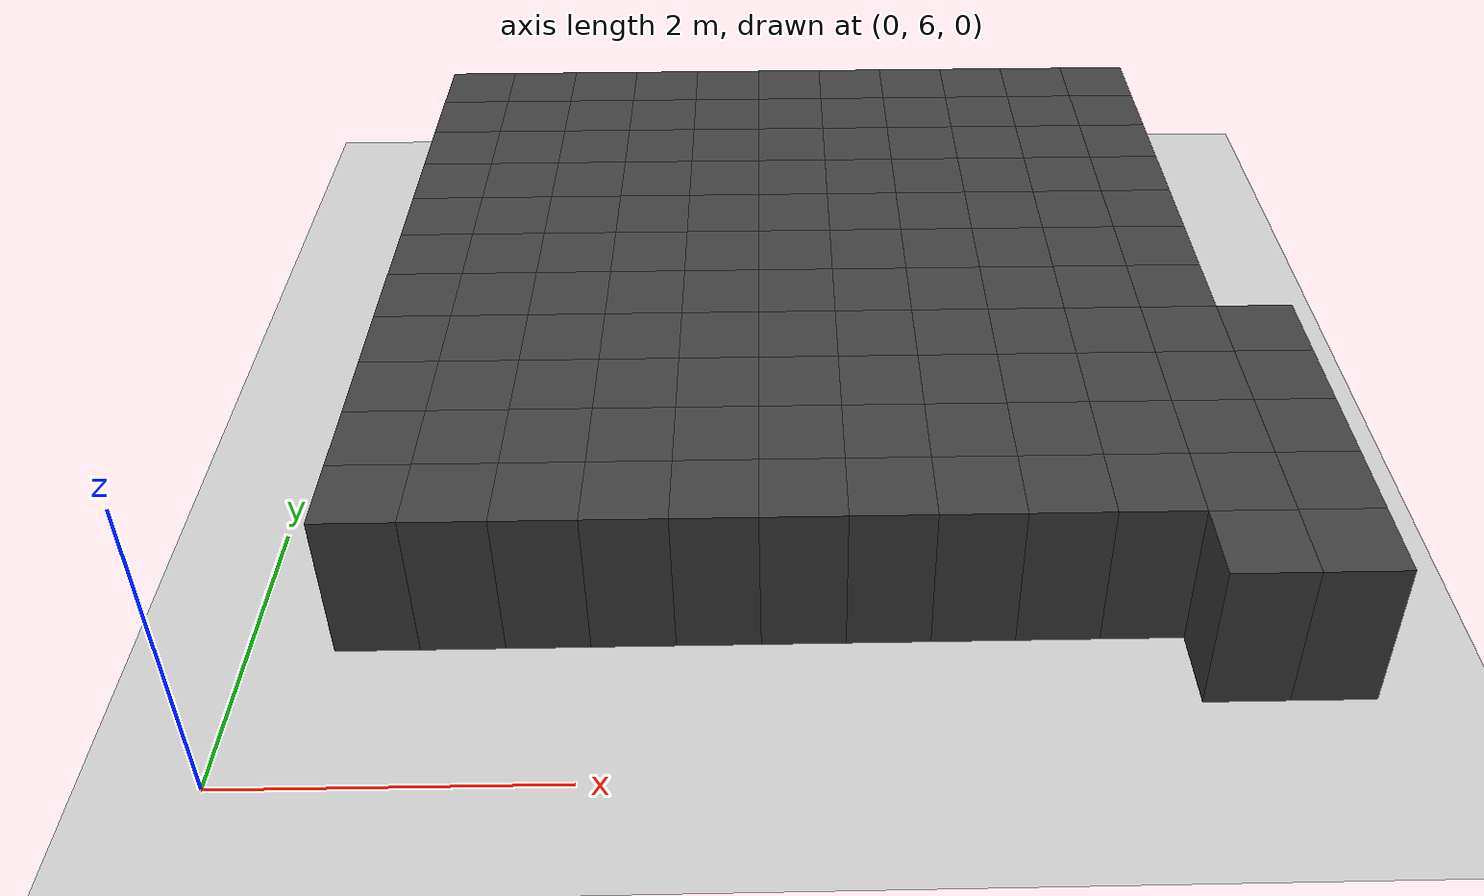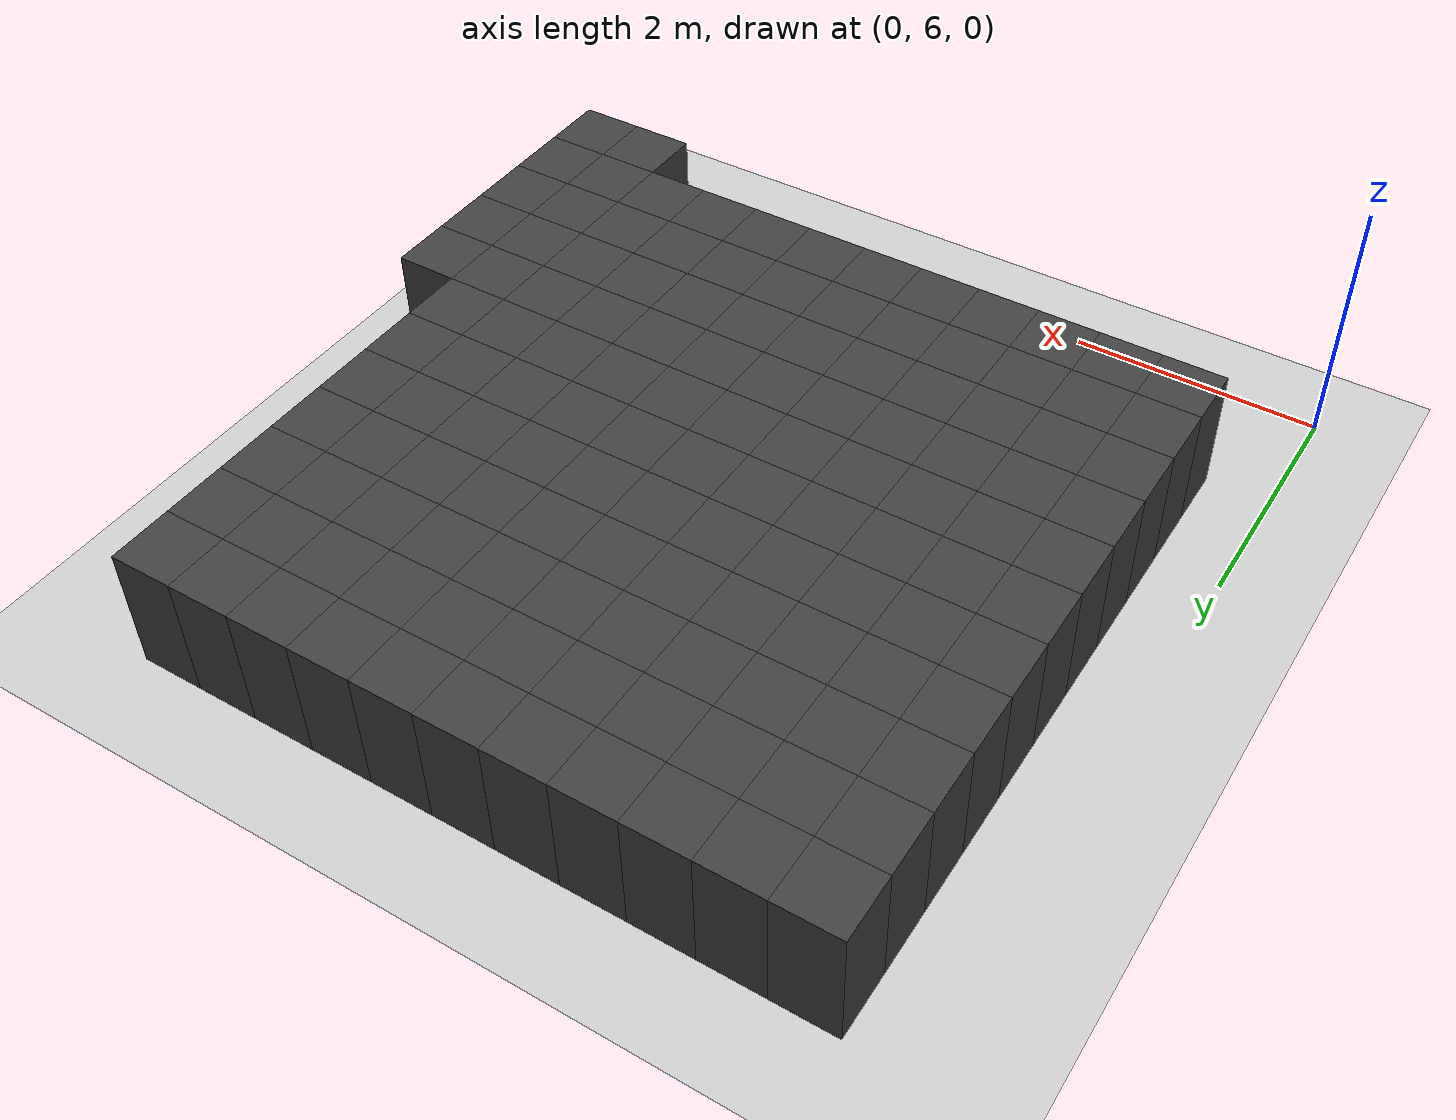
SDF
<sdf version="1.7">
 <world name="map_11779">
  <model name="ground_plane">
   <static>true</static>
   <link name="link">
    <collision name="collision">
     <geometry><plane><normal>0 0 1</normal><size>200 200</size></plane></geometry>
    </collision>
    <visual name="visual">
     <geometry><plane><normal>0 0 1</normal><size>200 200</size></plane></geometry>
     <material><ambient>0.8 0.8 0.8 1</ambient><diffuse>0.8 0.8 0.8 1</diffuse></material>
    </visual>
   </link>
  </model>
  <model name="maze_environment">
   <static>true</static>
   <link name="wall_26">
    <pose>0.750 12.250 0.500 0 0 0</pose>
    <collision name="col"><geometry><box><size>0.5 0.5 1.0</size></box></geometry></collision>
    <visual name="vis">
     <geometry><box><size>0.5 0.5 1.0</size></box></geometry>
     <material><ambient>0.15 0.15 0.15 1</ambient><diffuse>0.25 0.25 0.25 1</diffuse></material>
    </visual>
   </link>
   <link name="wall_27">
    <pose>1.250 12.250 0.500 0 0 0</pose>
    <collision name="col"><geometry><box><size>0.5 0.5 1.0</size></box></geometry></collision>
    <visual name="vis">
     <geometry><box><size>0.5 0.5 1.0</size></box></geometry>
     <material><ambient>0.15 0.15 0.15 1</ambient><diffuse>0.25 0.25 0.25 1</diffuse></material>
    </visual>
   </link>
   <link name="wall_28">
    <pose>1.750 12.250 0.500 0 0 0</pose>
    <collision name="col"><geometry><box><size>0.5 0.5 1.0</size></box></geometry></collision>
    <visual name="vis">
     <geometry><box><size>0.5 0.5 1.0</size></box></geometry>
     <material><ambient>0.15 0.15 0.15 1</ambient><diffuse>0.25 0.25 0.25 1</diffuse></material>
    </visual>
   </link>
   <link name="wall_29">
    <pose>2.250 12.250 0.500 0 0 0</pose>
    <collision name="col"><geometry><box><size>0.5 0.5 1.0</size></box></geometry></collision>
    <visual name="vis">
     <geometry><box><size>0.5 0.5 1.0</size></box></geometry>
     <material><ambient>0.15 0.15 0.15 1</ambient><diffuse>0.25 0.25 0.25 1</diffuse></material>
    </visual>
   </link>
   <link name="wall_30">
    <pose>2.750 12.250 0.500 0 0 0</pose>
    <collision name="col"><geometry><box><size>0.5 0.5 1.0</size></box></geometry></collision>
    <visual name="vis">
     <geometry><box><size>0.5 0.5 1.0</size></box></geometry>
     <material><ambient>0.15 0.15 0.15 1</ambient><diffuse>0.25 0.25 0.25 1</diffuse></material>
    </visual>
   </link>
   <link name="wall_31">
    <pose>3.250 12.250 0.500 0 0 0</pose>
    <collision name="col"><geometry><box><size>0.5 0.5 1.0</size></box></geometry></collision>
    <visual name="vis">
     <geometry><box><size>0.5 0.5 1.0</size></box></geometry>
     <material><ambient>0.15 0.15 0.15 1</ambient><diffuse>0.25 0.25 0.25 1</diffuse></material>
    </visual>
   </link>
   <link name="wall_32">
    <pose>3.750 12.250 0.500 0 0 0</pose>
    <collision name="col"><geometry><box><size>0.5 0.5 1.0</size></box></geometry></collision>
    <visual name="vis">
     <geometry><box><size>0.5 0.5 1.0</size></box></geometry>
     <material><ambient>0.15 0.15 0.15 1</ambient><diffuse>0.25 0.25 0.25 1</diffuse></material>
    </visual>
   </link>
   <link name="wall_33">
    <pose>4.250 12.250 0.500 0 0 0</pose>
    <collision name="col"><geometry><box><size>0.5 0.5 1.0</size></box></geometry></collision>
    <visual name="vis">
     <geometry><box><size>0.5 0.5 1.0</size></box></geometry>
     <material><ambient>0.15 0.15 0.15 1</ambient><diffuse>0.25 0.25 0.25 1</diffuse></material>
    </visual>
   </link>
   <link name="wall_34">
    <pose>4.750 12.250 0.500 0 0 0</pose>
    <collision name="col"><geometry><box><size>0.5 0.5 1.0</size></box></geometry></collision>
    <visual name="vis">
     <geometry><box><size>0.5 0.5 1.0</size></box></geometry>
     <material><ambient>0.15 0.15 0.15 1</ambient><diffuse>0.25 0.25 0.25 1</diffuse></material>
    </visual>
   </link>
   <link name="wall_35">
    <pose>5.250 12.250 0.500 0 0 0</pose>
    <collision name="col"><geometry><box><size>0.5 0.5 1.0</size></box></geometry></collision>
    <visual name="vis">
     <geometry><box><size>0.5 0.5 1.0</size></box></geometry>
     <material><ambient>0.15 0.15 0.15 1</ambient><diffuse>0.25 0.25 0.25 1</diffuse></material>
    </visual>
   </link>
   <link name="wall_36">
    <pose>5.750 12.250 0.500 0 0 0</pose>
    <collision name="col"><geometry><box><size>0.5 0.5 1.0</size></box></geometry></collision>
    <visual name="vis">
     <geometry><box><size>0.5 0.5 1.0</size></box></geometry>
     <material><ambient>0.15 0.15 0.15 1</ambient><diffuse>0.25 0.25 0.25 1</diffuse></material>
    </visual>
   </link>
   <link name="wall_67">
    <pose>0.750 11.750 0.500 0 0 0</pose>
    <collision name="col"><geometry><box><size>0.5 0.5 1.0</size></box></geometry></collision>
    <visual name="vis">
     <geometry><box><size>0.5 0.5 1.0</size></box></geometry>
     <material><ambient>0.15 0.15 0.15 1</ambient><diffuse>0.25 0.25 0.25 1</diffuse></material>
    </visual>
   </link>
   <link name="wall_68">
    <pose>1.250 11.750 0.500 0 0 0</pose>
    <collision name="col"><geometry><box><size>0.5 0.5 1.0</size></box></geometry></collision>
    <visual name="vis">
     <geometry><box><size>0.5 0.5 1.0</size></box></geometry>
     <material><ambient>0.15 0.15 0.15 1</ambient><diffuse>0.25 0.25 0.25 1</diffuse></material>
    </visual>
   </link>
   <link name="wall_69">
    <pose>1.750 11.750 0.500 0 0 0</pose>
    <collision name="col"><geometry><box><size>0.5 0.5 1.0</size></box></geometry></collision>
    <visual name="vis">
     <geometry><box><size>0.5 0.5 1.0</size></box></geometry>
     <material><ambient>0.15 0.15 0.15 1</ambient><diffuse>0.25 0.25 0.25 1</diffuse></material>
    </visual>
   </link>
   <link name="wall_70">
    <pose>2.250 11.750 0.500 0 0 0</pose>
    <collision name="col"><geometry><box><size>0.5 0.5 1.0</size></box></geometry></collision>
    <visual name="vis">
     <geometry><box><size>0.5 0.5 1.0</size></box></geometry>
     <material><ambient>0.15 0.15 0.15 1</ambient><diffuse>0.25 0.25 0.25 1</diffuse></material>
    </visual>
   </link>
   <link name="wall_71">
    <pose>2.750 11.750 0.500 0 0 0</pose>
    <collision name="col"><geometry><box><size>0.5 0.5 1.0</size></box></geometry></collision>
    <visual name="vis">
     <geometry><box><size>0.5 0.5 1.0</size></box></geometry>
     <material><ambient>0.15 0.15 0.15 1</ambient><diffuse>0.25 0.25 0.25 1</diffuse></material>
    </visual>
   </link>
   <link name="wall_72">
    <pose>3.250 11.750 0.500 0 0 0</pose>
    <collision name="col"><geometry><box><size>0.5 0.5 1.0</size></box></geometry></collision>
    <visual name="vis">
     <geometry><box><size>0.5 0.5 1.0</size></box></geometry>
     <material><ambient>0.15 0.15 0.15 1</ambient><diffuse>0.25 0.25 0.25 1</diffuse></material>
    </visual>
   </link>
   <link name="wall_73">
    <pose>3.750 11.750 0.500 0 0 0</pose>
    <collision name="col"><geometry><box><size>0.5 0.5 1.0</size></box></geometry></collision>
    <visual name="vis">
     <geometry><box><size>0.5 0.5 1.0</size></box></geometry>
     <material><ambient>0.15 0.15 0.15 1</ambient><diffuse>0.25 0.25 0.25 1</diffuse></material>
    </visual>
   </link>
   <link name="wall_74">
    <pose>4.250 11.750 0.500 0 0 0</pose>
    <collision name="col"><geometry><box><size>0.5 0.5 1.0</size></box></geometry></collision>
    <visual name="vis">
     <geometry><box><size>0.5 0.5 1.0</size></box></geometry>
     <material><ambient>0.15 0.15 0.15 1</ambient><diffuse>0.25 0.25 0.25 1</diffuse></material>
    </visual>
   </link>
   <link name="wall_75">
    <pose>4.750 11.750 0.500 0 0 0</pose>
    <collision name="col"><geometry><box><size>0.5 0.5 1.0</size></box></geometry></collision>
    <visual name="vis">
     <geometry><box><size>0.5 0.5 1.0</size></box></geometry>
     <material><ambient>0.15 0.15 0.15 1</ambient><diffuse>0.25 0.25 0.25 1</diffuse></material>
    </visual>
   </link>
   <link name="wall_76">
    <pose>5.250 11.750 0.500 0 0 0</pose>
    <collision name="col"><geometry><box><size>0.5 0.5 1.0</size></box></geometry></collision>
    <visual name="vis">
     <geometry><box><size>0.5 0.5 1.0</size></box></geometry>
     <material><ambient>0.15 0.15 0.15 1</ambient><diffuse>0.25 0.25 0.25 1</diffuse></material>
    </visual>
   </link>
   <link name="wall_77">
    <pose>5.750 11.750 0.500 0 0 0</pose>
    <collision name="col"><geometry><box><size>0.5 0.5 1.0</size></box></geometry></collision>
    <visual name="vis">
     <geometry><box><size>0.5 0.5 1.0</size></box></geometry>
     <material><ambient>0.15 0.15 0.15 1</ambient><diffuse>0.25 0.25 0.25 1</diffuse></material>
    </visual>
   </link>
   <link name="wall_108">
    <pose>0.750 11.250 0.500 0 0 0</pose>
    <collision name="col"><geometry><box><size>0.5 0.5 1.0</size></box></geometry></collision>
    <visual name="vis">
     <geometry><box><size>0.5 0.5 1.0</size></box></geometry>
     <material><ambient>0.15 0.15 0.15 1</ambient><diffuse>0.25 0.25 0.25 1</diffuse></material>
    </visual>
   </link>
   <link name="wall_109">
    <pose>1.250 11.250 0.500 0 0 0</pose>
    <collision name="col"><geometry><box><size>0.5 0.5 1.0</size></box></geometry></collision>
    <visual name="vis">
     <geometry><box><size>0.5 0.5 1.0</size></box></geometry>
     <material><ambient>0.15 0.15 0.15 1</ambient><diffuse>0.25 0.25 0.25 1</diffuse></material>
    </visual>
   </link>
   <link name="wall_110">
    <pose>1.750 11.250 0.500 0 0 0</pose>
    <collision name="col"><geometry><box><size>0.5 0.5 1.0</size></box></geometry></collision>
    <visual name="vis">
     <geometry><box><size>0.5 0.5 1.0</size></box></geometry>
     <material><ambient>0.15 0.15 0.15 1</ambient><diffuse>0.25 0.25 0.25 1</diffuse></material>
    </visual>
   </link>
   <link name="wall_111">
    <pose>2.250 11.250 0.500 0 0 0</pose>
    <collision name="col"><geometry><box><size>0.5 0.5 1.0</size></box></geometry></collision>
    <visual name="vis">
     <geometry><box><size>0.5 0.5 1.0</size></box></geometry>
     <material><ambient>0.15 0.15 0.15 1</ambient><diffuse>0.25 0.25 0.25 1</diffuse></material>
    </visual>
   </link>
   <link name="wall_112">
    <pose>2.750 11.250 0.500 0 0 0</pose>
    <collision name="col"><geometry><box><size>0.5 0.5 1.0</size></box></geometry></collision>
    <visual name="vis">
     <geometry><box><size>0.5 0.5 1.0</size></box></geometry>
     <material><ambient>0.15 0.15 0.15 1</ambient><diffuse>0.25 0.25 0.25 1</diffuse></material>
    </visual>
   </link>
   <link name="wall_113">
    <pose>3.250 11.250 0.500 0 0 0</pose>
    <collision name="col"><geometry><box><size>0.5 0.5 1.0</size></box></geometry></collision>
    <visual name="vis">
     <geometry><box><size>0.5 0.5 1.0</size></box></geometry>
     <material><ambient>0.15 0.15 0.15 1</ambient><diffuse>0.25 0.25 0.25 1</diffuse></material>
    </visual>
   </link>
   <link name="wall_114">
    <pose>3.750 11.250 0.500 0 0 0</pose>
    <collision name="col"><geometry><box><size>0.5 0.5 1.0</size></box></geometry></collision>
    <visual name="vis">
     <geometry><box><size>0.5 0.5 1.0</size></box></geometry>
     <material><ambient>0.15 0.15 0.15 1</ambient><diffuse>0.25 0.25 0.25 1</diffuse></material>
    </visual>
   </link>
   <link name="wall_115">
    <pose>4.250 11.250 0.500 0 0 0</pose>
    <collision name="col"><geometry><box><size>0.5 0.5 1.0</size></box></geometry></collision>
    <visual name="vis">
     <geometry><box><size>0.5 0.5 1.0</size></box></geometry>
     <material><ambient>0.15 0.15 0.15 1</ambient><diffuse>0.25 0.25 0.25 1</diffuse></material>
    </visual>
   </link>
   <link name="wall_116">
    <pose>4.750 11.250 0.500 0 0 0</pose>
    <collision name="col"><geometry><box><size>0.5 0.5 1.0</size></box></geometry></collision>
    <visual name="vis">
     <geometry><box><size>0.5 0.5 1.0</size></box></geometry>
     <material><ambient>0.15 0.15 0.15 1</ambient><diffuse>0.25 0.25 0.25 1</diffuse></material>
    </visual>
   </link>
   <link name="wall_117">
    <pose>5.250 11.250 0.500 0 0 0</pose>
    <collision name="col"><geometry><box><size>0.5 0.5 1.0</size></box></geometry></collision>
    <visual name="vis">
     <geometry><box><size>0.5 0.5 1.0</size></box></geometry>
     <material><ambient>0.15 0.15 0.15 1</ambient><diffuse>0.25 0.25 0.25 1</diffuse></material>
    </visual>
   </link>
   <link name="wall_118">
    <pose>5.750 11.250 0.500 0 0 0</pose>
    <collision name="col"><geometry><box><size>0.5 0.5 1.0</size></box></geometry></collision>
    <visual name="vis">
     <geometry><box><size>0.5 0.5 1.0</size></box></geometry>
     <material><ambient>0.15 0.15 0.15 1</ambient><diffuse>0.25 0.25 0.25 1</diffuse></material>
    </visual>
   </link>
   <link name="wall_149">
    <pose>0.750 10.750 0.500 0 0 0</pose>
    <collision name="col"><geometry><box><size>0.5 0.5 1.0</size></box></geometry></collision>
    <visual name="vis">
     <geometry><box><size>0.5 0.5 1.0</size></box></geometry>
     <material><ambient>0.15 0.15 0.15 1</ambient><diffuse>0.25 0.25 0.25 1</diffuse></material>
    </visual>
   </link>
   <link name="wall_150">
    <pose>1.250 10.750 0.500 0 0 0</pose>
    <collision name="col"><geometry><box><size>0.5 0.5 1.0</size></box></geometry></collision>
    <visual name="vis">
     <geometry><box><size>0.5 0.5 1.0</size></box></geometry>
     <material><ambient>0.15 0.15 0.15 1</ambient><diffuse>0.25 0.25 0.25 1</diffuse></material>
    </visual>
   </link>
   <link name="wall_151">
    <pose>1.750 10.750 0.500 0 0 0</pose>
    <collision name="col"><geometry><box><size>0.5 0.5 1.0</size></box></geometry></collision>
    <visual name="vis">
     <geometry><box><size>0.5 0.5 1.0</size></box></geometry>
     <material><ambient>0.15 0.15 0.15 1</ambient><diffuse>0.25 0.25 0.25 1</diffuse></material>
    </visual>
   </link>
   <link name="wall_152">
    <pose>2.250 10.750 0.500 0 0 0</pose>
    <collision name="col"><geometry><box><size>0.5 0.5 1.0</size></box></geometry></collision>
    <visual name="vis">
     <geometry><box><size>0.5 0.5 1.0</size></box></geometry>
     <material><ambient>0.15 0.15 0.15 1</ambient><diffuse>0.25 0.25 0.25 1</diffuse></material>
    </visual>
   </link>
   <link name="wall_153">
    <pose>2.750 10.750 0.500 0 0 0</pose>
    <collision name="col"><geometry><box><size>0.5 0.5 1.0</size></box></geometry></collision>
    <visual name="vis">
     <geometry><box><size>0.5 0.5 1.0</size></box></geometry>
     <material><ambient>0.15 0.15 0.15 1</ambient><diffuse>0.25 0.25 0.25 1</diffuse></material>
    </visual>
   </link>
   <link name="wall_154">
    <pose>3.250 10.750 0.500 0 0 0</pose>
    <collision name="col"><geometry><box><size>0.5 0.5 1.0</size></box></geometry></collision>
    <visual name="vis">
     <geometry><box><size>0.5 0.5 1.0</size></box></geometry>
     <material><ambient>0.15 0.15 0.15 1</ambient><diffuse>0.25 0.25 0.25 1</diffuse></material>
    </visual>
   </link>
   <link name="wall_155">
    <pose>3.750 10.750 0.500 0 0 0</pose>
    <collision name="col"><geometry><box><size>0.5 0.5 1.0</size></box></geometry></collision>
    <visual name="vis">
     <geometry><box><size>0.5 0.5 1.0</size></box></geometry>
     <material><ambient>0.15 0.15 0.15 1</ambient><diffuse>0.25 0.25 0.25 1</diffuse></material>
    </visual>
   </link>
   <link name="wall_156">
    <pose>4.250 10.750 0.500 0 0 0</pose>
    <collision name="col"><geometry><box><size>0.5 0.5 1.0</size></box></geometry></collision>
    <visual name="vis">
     <geometry><box><size>0.5 0.5 1.0</size></box></geometry>
     <material><ambient>0.15 0.15 0.15 1</ambient><diffuse>0.25 0.25 0.25 1</diffuse></material>
    </visual>
   </link>
   <link name="wall_157">
    <pose>4.750 10.750 0.500 0 0 0</pose>
    <collision name="col"><geometry><box><size>0.5 0.5 1.0</size></box></geometry></collision>
    <visual name="vis">
     <geometry><box><size>0.5 0.5 1.0</size></box></geometry>
     <material><ambient>0.15 0.15 0.15 1</ambient><diffuse>0.25 0.25 0.25 1</diffuse></material>
    </visual>
   </link>
   <link name="wall_158">
    <pose>5.250 10.750 0.500 0 0 0</pose>
    <collision name="col"><geometry><box><size>0.5 0.5 1.0</size></box></geometry></collision>
    <visual name="vis">
     <geometry><box><size>0.5 0.5 1.0</size></box></geometry>
     <material><ambient>0.15 0.15 0.15 1</ambient><diffuse>0.25 0.25 0.25 1</diffuse></material>
    </visual>
   </link>
   <link name="wall_159">
    <pose>5.750 10.750 0.500 0 0 0</pose>
    <collision name="col"><geometry><box><size>0.5 0.5 1.0</size></box></geometry></collision>
    <visual name="vis">
     <geometry><box><size>0.5 0.5 1.0</size></box></geometry>
     <material><ambient>0.15 0.15 0.15 1</ambient><diffuse>0.25 0.25 0.25 1</diffuse></material>
    </visual>
   </link>
   <link name="wall_192">
    <pose>0.750 10.250 0.500 0 0 0</pose>
    <collision name="col"><geometry><box><size>0.5 0.5 1.0</size></box></geometry></collision>
    <visual name="vis">
     <geometry><box><size>0.5 0.5 1.0</size></box></geometry>
     <material><ambient>0.15 0.15 0.15 1</ambient><diffuse>0.25 0.25 0.25 1</diffuse></material>
    </visual>
   </link>
   <link name="wall_193">
    <pose>1.250 10.250 0.500 0 0 0</pose>
    <collision name="col"><geometry><box><size>0.5 0.5 1.0</size></box></geometry></collision>
    <visual name="vis">
     <geometry><box><size>0.5 0.5 1.0</size></box></geometry>
     <material><ambient>0.15 0.15 0.15 1</ambient><diffuse>0.25 0.25 0.25 1</diffuse></material>
    </visual>
   </link>
   <link name="wall_194">
    <pose>1.750 10.250 0.500 0 0 0</pose>
    <collision name="col"><geometry><box><size>0.5 0.5 1.0</size></box></geometry></collision>
    <visual name="vis">
     <geometry><box><size>0.5 0.5 1.0</size></box></geometry>
     <material><ambient>0.15 0.15 0.15 1</ambient><diffuse>0.25 0.25 0.25 1</diffuse></material>
    </visual>
   </link>
   <link name="wall_195">
    <pose>2.250 10.250 0.500 0 0 0</pose>
    <collision name="col"><geometry><box><size>0.5 0.5 1.0</size></box></geometry></collision>
    <visual name="vis">
     <geometry><box><size>0.5 0.5 1.0</size></box></geometry>
     <material><ambient>0.15 0.15 0.15 1</ambient><diffuse>0.25 0.25 0.25 1</diffuse></material>
    </visual>
   </link>
   <link name="wall_196">
    <pose>2.750 10.250 0.500 0 0 0</pose>
    <collision name="col"><geometry><box><size>0.5 0.5 1.0</size></box></geometry></collision>
    <visual name="vis">
     <geometry><box><size>0.5 0.5 1.0</size></box></geometry>
     <material><ambient>0.15 0.15 0.15 1</ambient><diffuse>0.25 0.25 0.25 1</diffuse></material>
    </visual>
   </link>
   <link name="wall_197">
    <pose>3.250 10.250 0.500 0 0 0</pose>
    <collision name="col"><geometry><box><size>0.5 0.5 1.0</size></box></geometry></collision>
    <visual name="vis">
     <geometry><box><size>0.5 0.5 1.0</size></box></geometry>
     <material><ambient>0.15 0.15 0.15 1</ambient><diffuse>0.25 0.25 0.25 1</diffuse></material>
    </visual>
   </link>
   <link name="wall_198">
    <pose>3.750 10.250 0.500 0 0 0</pose>
    <collision name="col"><geometry><box><size>0.5 0.5 1.0</size></box></geometry></collision>
    <visual name="vis">
     <geometry><box><size>0.5 0.5 1.0</size></box></geometry>
     <material><ambient>0.15 0.15 0.15 1</ambient><diffuse>0.25 0.25 0.25 1</diffuse></material>
    </visual>
   </link>
   <link name="wall_199">
    <pose>4.250 10.250 0.500 0 0 0</pose>
    <collision name="col"><geometry><box><size>0.5 0.5 1.0</size></box></geometry></collision>
    <visual name="vis">
     <geometry><box><size>0.5 0.5 1.0</size></box></geometry>
     <material><ambient>0.15 0.15 0.15 1</ambient><diffuse>0.25 0.25 0.25 1</diffuse></material>
    </visual>
   </link>
   <link name="wall_200">
    <pose>4.750 10.250 0.500 0 0 0</pose>
    <collision name="col"><geometry><box><size>0.5 0.5 1.0</size></box></geometry></collision>
    <visual name="vis">
     <geometry><box><size>0.5 0.5 1.0</size></box></geometry>
     <material><ambient>0.15 0.15 0.15 1</ambient><diffuse>0.25 0.25 0.25 1</diffuse></material>
    </visual>
   </link>
   <link name="wall_201">
    <pose>5.250 10.250 0.500 0 0 0</pose>
    <collision name="col"><geometry><box><size>0.5 0.5 1.0</size></box></geometry></collision>
    <visual name="vis">
     <geometry><box><size>0.5 0.5 1.0</size></box></geometry>
     <material><ambient>0.15 0.15 0.15 1</ambient><diffuse>0.25 0.25 0.25 1</diffuse></material>
    </visual>
   </link>
   <link name="wall_202">
    <pose>5.750 10.250 0.500 0 0 0</pose>
    <collision name="col"><geometry><box><size>0.5 0.5 1.0</size></box></geometry></collision>
    <visual name="vis">
     <geometry><box><size>0.5 0.5 1.0</size></box></geometry>
     <material><ambient>0.15 0.15 0.15 1</ambient><diffuse>0.25 0.25 0.25 1</diffuse></material>
    </visual>
   </link>
   <link name="wall_225">
    <pose>0.750 9.750 0.500 0 0 0</pose>
    <collision name="col"><geometry><box><size>0.5 0.5 1.0</size></box></geometry></collision>
    <visual name="vis">
     <geometry><box><size>0.5 0.5 1.0</size></box></geometry>
     <material><ambient>0.15 0.15 0.15 1</ambient><diffuse>0.25 0.25 0.25 1</diffuse></material>
    </visual>
   </link>
   <link name="wall_226">
    <pose>1.250 9.750 0.500 0 0 0</pose>
    <collision name="col"><geometry><box><size>0.5 0.5 1.0</size></box></geometry></collision>
    <visual name="vis">
     <geometry><box><size>0.5 0.5 1.0</size></box></geometry>
     <material><ambient>0.15 0.15 0.15 1</ambient><diffuse>0.25 0.25 0.25 1</diffuse></material>
    </visual>
   </link>
   <link name="wall_227">
    <pose>1.750 9.750 0.500 0 0 0</pose>
    <collision name="col"><geometry><box><size>0.5 0.5 1.0</size></box></geometry></collision>
    <visual name="vis">
     <geometry><box><size>0.5 0.5 1.0</size></box></geometry>
     <material><ambient>0.15 0.15 0.15 1</ambient><diffuse>0.25 0.25 0.25 1</diffuse></material>
    </visual>
   </link>
   <link name="wall_228">
    <pose>2.250 9.750 0.500 0 0 0</pose>
    <collision name="col"><geometry><box><size>0.5 0.5 1.0</size></box></geometry></collision>
    <visual name="vis">
     <geometry><box><size>0.5 0.5 1.0</size></box></geometry>
     <material><ambient>0.15 0.15 0.15 1</ambient><diffuse>0.25 0.25 0.25 1</diffuse></material>
    </visual>
   </link>
   <link name="wall_229">
    <pose>2.750 9.750 0.500 0 0 0</pose>
    <collision name="col"><geometry><box><size>0.5 0.5 1.0</size></box></geometry></collision>
    <visual name="vis">
     <geometry><box><size>0.5 0.5 1.0</size></box></geometry>
     <material><ambient>0.15 0.15 0.15 1</ambient><diffuse>0.25 0.25 0.25 1</diffuse></material>
    </visual>
   </link>
   <link name="wall_230">
    <pose>3.250 9.750 0.500 0 0 0</pose>
    <collision name="col"><geometry><box><size>0.5 0.5 1.0</size></box></geometry></collision>
    <visual name="vis">
     <geometry><box><size>0.5 0.5 1.0</size></box></geometry>
     <material><ambient>0.15 0.15 0.15 1</ambient><diffuse>0.25 0.25 0.25 1</diffuse></material>
    </visual>
   </link>
   <link name="wall_231">
    <pose>3.750 9.750 0.500 0 0 0</pose>
    <collision name="col"><geometry><box><size>0.5 0.5 1.0</size></box></geometry></collision>
    <visual name="vis">
     <geometry><box><size>0.5 0.5 1.0</size></box></geometry>
     <material><ambient>0.15 0.15 0.15 1</ambient><diffuse>0.25 0.25 0.25 1</diffuse></material>
    </visual>
   </link>
   <link name="wall_232">
    <pose>4.250 9.750 0.500 0 0 0</pose>
    <collision name="col"><geometry><box><size>0.5 0.5 1.0</size></box></geometry></collision>
    <visual name="vis">
     <geometry><box><size>0.5 0.5 1.0</size></box></geometry>
     <material><ambient>0.15 0.15 0.15 1</ambient><diffuse>0.25 0.25 0.25 1</diffuse></material>
    </visual>
   </link>
   <link name="wall_233">
    <pose>4.750 9.750 0.500 0 0 0</pose>
    <collision name="col"><geometry><box><size>0.5 0.5 1.0</size></box></geometry></collision>
    <visual name="vis">
     <geometry><box><size>0.5 0.5 1.0</size></box></geometry>
     <material><ambient>0.15 0.15 0.15 1</ambient><diffuse>0.25 0.25 0.25 1</diffuse></material>
    </visual>
   </link>
   <link name="wall_234">
    <pose>5.250 9.750 0.500 0 0 0</pose>
    <collision name="col"><geometry><box><size>0.5 0.5 1.0</size></box></geometry></collision>
    <visual name="vis">
     <geometry><box><size>0.5 0.5 1.0</size></box></geometry>
     <material><ambient>0.15 0.15 0.15 1</ambient><diffuse>0.25 0.25 0.25 1</diffuse></material>
    </visual>
   </link>
   <link name="wall_235">
    <pose>5.750 9.750 0.500 0 0 0</pose>
    <collision name="col"><geometry><box><size>0.5 0.5 1.0</size></box></geometry></collision>
    <visual name="vis">
     <geometry><box><size>0.5 0.5 1.0</size></box></geometry>
     <material><ambient>0.15 0.15 0.15 1</ambient><diffuse>0.25 0.25 0.25 1</diffuse></material>
    </visual>
   </link>
   <link name="wall_269">
    <pose>0.750 9.250 0.500 0 0 0</pose>
    <collision name="col"><geometry><box><size>0.5 0.5 1.0</size></box></geometry></collision>
    <visual name="vis">
     <geometry><box><size>0.5 0.5 1.0</size></box></geometry>
     <material><ambient>0.15 0.15 0.15 1</ambient><diffuse>0.25 0.25 0.25 1</diffuse></material>
    </visual>
   </link>
   <link name="wall_270">
    <pose>1.250 9.250 0.500 0 0 0</pose>
    <collision name="col"><geometry><box><size>0.5 0.5 1.0</size></box></geometry></collision>
    <visual name="vis">
     <geometry><box><size>0.5 0.5 1.0</size></box></geometry>
     <material><ambient>0.15 0.15 0.15 1</ambient><diffuse>0.25 0.25 0.25 1</diffuse></material>
    </visual>
   </link>
   <link name="wall_271">
    <pose>1.750 9.250 0.500 0 0 0</pose>
    <collision name="col"><geometry><box><size>0.5 0.5 1.0</size></box></geometry></collision>
    <visual name="vis">
     <geometry><box><size>0.5 0.5 1.0</size></box></geometry>
     <material><ambient>0.15 0.15 0.15 1</ambient><diffuse>0.25 0.25 0.25 1</diffuse></material>
    </visual>
   </link>
   <link name="wall_272">
    <pose>2.250 9.250 0.500 0 0 0</pose>
    <collision name="col"><geometry><box><size>0.5 0.5 1.0</size></box></geometry></collision>
    <visual name="vis">
     <geometry><box><size>0.5 0.5 1.0</size></box></geometry>
     <material><ambient>0.15 0.15 0.15 1</ambient><diffuse>0.25 0.25 0.25 1</diffuse></material>
    </visual>
   </link>
   <link name="wall_273">
    <pose>2.750 9.250 0.500 0 0 0</pose>
    <collision name="col"><geometry><box><size>0.5 0.5 1.0</size></box></geometry></collision>
    <visual name="vis">
     <geometry><box><size>0.5 0.5 1.0</size></box></geometry>
     <material><ambient>0.15 0.15 0.15 1</ambient><diffuse>0.25 0.25 0.25 1</diffuse></material>
    </visual>
   </link>
   <link name="wall_274">
    <pose>3.250 9.250 0.500 0 0 0</pose>
    <collision name="col"><geometry><box><size>0.5 0.5 1.0</size></box></geometry></collision>
    <visual name="vis">
     <geometry><box><size>0.5 0.5 1.0</size></box></geometry>
     <material><ambient>0.15 0.15 0.15 1</ambient><diffuse>0.25 0.25 0.25 1</diffuse></material>
    </visual>
   </link>
   <link name="wall_275">
    <pose>3.750 9.250 0.500 0 0 0</pose>
    <collision name="col"><geometry><box><size>0.5 0.5 1.0</size></box></geometry></collision>
    <visual name="vis">
     <geometry><box><size>0.5 0.5 1.0</size></box></geometry>
     <material><ambient>0.15 0.15 0.15 1</ambient><diffuse>0.25 0.25 0.25 1</diffuse></material>
    </visual>
   </link>
   <link name="wall_276">
    <pose>4.250 9.250 0.500 0 0 0</pose>
    <collision name="col"><geometry><box><size>0.5 0.5 1.0</size></box></geometry></collision>
    <visual name="vis">
     <geometry><box><size>0.5 0.5 1.0</size></box></geometry>
     <material><ambient>0.15 0.15 0.15 1</ambient><diffuse>0.25 0.25 0.25 1</diffuse></material>
    </visual>
   </link>
   <link name="wall_277">
    <pose>4.750 9.250 0.500 0 0 0</pose>
    <collision name="col"><geometry><box><size>0.5 0.5 1.0</size></box></geometry></collision>
    <visual name="vis">
     <geometry><box><size>0.5 0.5 1.0</size></box></geometry>
     <material><ambient>0.15 0.15 0.15 1</ambient><diffuse>0.25 0.25 0.25 1</diffuse></material>
    </visual>
   </link>
   <link name="wall_278">
    <pose>5.250 9.250 0.500 0 0 0</pose>
    <collision name="col"><geometry><box><size>0.5 0.5 1.0</size></box></geometry></collision>
    <visual name="vis">
     <geometry><box><size>0.5 0.5 1.0</size></box></geometry>
     <material><ambient>0.15 0.15 0.15 1</ambient><diffuse>0.25 0.25 0.25 1</diffuse></material>
    </visual>
   </link>
   <link name="wall_279">
    <pose>5.750 9.250 0.500 0 0 0</pose>
    <collision name="col"><geometry><box><size>0.5 0.5 1.0</size></box></geometry></collision>
    <visual name="vis">
     <geometry><box><size>0.5 0.5 1.0</size></box></geometry>
     <material><ambient>0.15 0.15 0.15 1</ambient><diffuse>0.25 0.25 0.25 1</diffuse></material>
    </visual>
   </link>
   <link name="wall_313">
    <pose>0.750 8.750 0.500 0 0 0</pose>
    <collision name="col"><geometry><box><size>0.5 0.5 1.0</size></box></geometry></collision>
    <visual name="vis">
     <geometry><box><size>0.5 0.5 1.0</size></box></geometry>
     <material><ambient>0.15 0.15 0.15 1</ambient><diffuse>0.25 0.25 0.25 1</diffuse></material>
    </visual>
   </link>
   <link name="wall_314">
    <pose>1.250 8.750 0.500 0 0 0</pose>
    <collision name="col"><geometry><box><size>0.5 0.5 1.0</size></box></geometry></collision>
    <visual name="vis">
     <geometry><box><size>0.5 0.5 1.0</size></box></geometry>
     <material><ambient>0.15 0.15 0.15 1</ambient><diffuse>0.25 0.25 0.25 1</diffuse></material>
    </visual>
   </link>
   <link name="wall_315">
    <pose>1.750 8.750 0.500 0 0 0</pose>
    <collision name="col"><geometry><box><size>0.5 0.5 1.0</size></box></geometry></collision>
    <visual name="vis">
     <geometry><box><size>0.5 0.5 1.0</size></box></geometry>
     <material><ambient>0.15 0.15 0.15 1</ambient><diffuse>0.25 0.25 0.25 1</diffuse></material>
    </visual>
   </link>
   <link name="wall_316">
    <pose>2.250 8.750 0.500 0 0 0</pose>
    <collision name="col"><geometry><box><size>0.5 0.5 1.0</size></box></geometry></collision>
    <visual name="vis">
     <geometry><box><size>0.5 0.5 1.0</size></box></geometry>
     <material><ambient>0.15 0.15 0.15 1</ambient><diffuse>0.25 0.25 0.25 1</diffuse></material>
    </visual>
   </link>
   <link name="wall_317">
    <pose>2.750 8.750 0.500 0 0 0</pose>
    <collision name="col"><geometry><box><size>0.5 0.5 1.0</size></box></geometry></collision>
    <visual name="vis">
     <geometry><box><size>0.5 0.5 1.0</size></box></geometry>
     <material><ambient>0.15 0.15 0.15 1</ambient><diffuse>0.25 0.25 0.25 1</diffuse></material>
    </visual>
   </link>
   <link name="wall_318">
    <pose>3.250 8.750 0.500 0 0 0</pose>
    <collision name="col"><geometry><box><size>0.5 0.5 1.0</size></box></geometry></collision>
    <visual name="vis">
     <geometry><box><size>0.5 0.5 1.0</size></box></geometry>
     <material><ambient>0.15 0.15 0.15 1</ambient><diffuse>0.25 0.25 0.25 1</diffuse></material>
    </visual>
   </link>
   <link name="wall_319">
    <pose>3.750 8.750 0.500 0 0 0</pose>
    <collision name="col"><geometry><box><size>0.5 0.5 1.0</size></box></geometry></collision>
    <visual name="vis">
     <geometry><box><size>0.5 0.5 1.0</size></box></geometry>
     <material><ambient>0.15 0.15 0.15 1</ambient><diffuse>0.25 0.25 0.25 1</diffuse></material>
    </visual>
   </link>
   <link name="wall_320">
    <pose>4.250 8.750 0.500 0 0 0</pose>
    <collision name="col"><geometry><box><size>0.5 0.5 1.0</size></box></geometry></collision>
    <visual name="vis">
     <geometry><box><size>0.5 0.5 1.0</size></box></geometry>
     <material><ambient>0.15 0.15 0.15 1</ambient><diffuse>0.25 0.25 0.25 1</diffuse></material>
    </visual>
   </link>
   <link name="wall_321">
    <pose>4.750 8.750 0.500 0 0 0</pose>
    <collision name="col"><geometry><box><size>0.5 0.5 1.0</size></box></geometry></collision>
    <visual name="vis">
     <geometry><box><size>0.5 0.5 1.0</size></box></geometry>
     <material><ambient>0.15 0.15 0.15 1</ambient><diffuse>0.25 0.25 0.25 1</diffuse></material>
    </visual>
   </link>
   <link name="wall_322">
    <pose>5.250 8.750 0.500 0 0 0</pose>
    <collision name="col"><geometry><box><size>0.5 0.5 1.0</size></box></geometry></collision>
    <visual name="vis">
     <geometry><box><size>0.5 0.5 1.0</size></box></geometry>
     <material><ambient>0.15 0.15 0.15 1</ambient><diffuse>0.25 0.25 0.25 1</diffuse></material>
    </visual>
   </link>
   <link name="wall_323">
    <pose>5.750 8.750 0.500 0 0 0</pose>
    <collision name="col"><geometry><box><size>0.5 0.5 1.0</size></box></geometry></collision>
    <visual name="vis">
     <geometry><box><size>0.5 0.5 1.0</size></box></geometry>
     <material><ambient>0.15 0.15 0.15 1</ambient><diffuse>0.25 0.25 0.25 1</diffuse></material>
    </visual>
   </link>
   <link name="wall_324">
    <pose>6.250 8.750 0.500 0 0 0</pose>
    <collision name="col"><geometry><box><size>0.5 0.5 1.0</size></box></geometry></collision>
    <visual name="vis">
     <geometry><box><size>0.5 0.5 1.0</size></box></geometry>
     <material><ambient>0.15 0.15 0.15 1</ambient><diffuse>0.25 0.25 0.25 1</diffuse></material>
    </visual>
   </link>
   <link name="wall_357">
    <pose>0.750 8.250 0.500 0 0 0</pose>
    <collision name="col"><geometry><box><size>0.5 0.5 1.0</size></box></geometry></collision>
    <visual name="vis">
     <geometry><box><size>0.5 0.5 1.0</size></box></geometry>
     <material><ambient>0.15 0.15 0.15 1</ambient><diffuse>0.25 0.25 0.25 1</diffuse></material>
    </visual>
   </link>
   <link name="wall_358">
    <pose>1.250 8.250 0.500 0 0 0</pose>
    <collision name="col"><geometry><box><size>0.5 0.5 1.0</size></box></geometry></collision>
    <visual name="vis">
     <geometry><box><size>0.5 0.5 1.0</size></box></geometry>
     <material><ambient>0.15 0.15 0.15 1</ambient><diffuse>0.25 0.25 0.25 1</diffuse></material>
    </visual>
   </link>
   <link name="wall_359">
    <pose>1.750 8.250 0.500 0 0 0</pose>
    <collision name="col"><geometry><box><size>0.5 0.5 1.0</size></box></geometry></collision>
    <visual name="vis">
     <geometry><box><size>0.5 0.5 1.0</size></box></geometry>
     <material><ambient>0.15 0.15 0.15 1</ambient><diffuse>0.25 0.25 0.25 1</diffuse></material>
    </visual>
   </link>
   <link name="wall_360">
    <pose>2.250 8.250 0.500 0 0 0</pose>
    <collision name="col"><geometry><box><size>0.5 0.5 1.0</size></box></geometry></collision>
    <visual name="vis">
     <geometry><box><size>0.5 0.5 1.0</size></box></geometry>
     <material><ambient>0.15 0.15 0.15 1</ambient><diffuse>0.25 0.25 0.25 1</diffuse></material>
    </visual>
   </link>
   <link name="wall_361">
    <pose>2.750 8.250 0.500 0 0 0</pose>
    <collision name="col"><geometry><box><size>0.5 0.5 1.0</size></box></geometry></collision>
    <visual name="vis">
     <geometry><box><size>0.5 0.5 1.0</size></box></geometry>
     <material><ambient>0.15 0.15 0.15 1</ambient><diffuse>0.25 0.25 0.25 1</diffuse></material>
    </visual>
   </link>
   <link name="wall_362">
    <pose>3.250 8.250 0.500 0 0 0</pose>
    <collision name="col"><geometry><box><size>0.5 0.5 1.0</size></box></geometry></collision>
    <visual name="vis">
     <geometry><box><size>0.5 0.5 1.0</size></box></geometry>
     <material><ambient>0.15 0.15 0.15 1</ambient><diffuse>0.25 0.25 0.25 1</diffuse></material>
    </visual>
   </link>
   <link name="wall_363">
    <pose>3.750 8.250 0.500 0 0 0</pose>
    <collision name="col"><geometry><box><size>0.5 0.5 1.0</size></box></geometry></collision>
    <visual name="vis">
     <geometry><box><size>0.5 0.5 1.0</size></box></geometry>
     <material><ambient>0.15 0.15 0.15 1</ambient><diffuse>0.25 0.25 0.25 1</diffuse></material>
    </visual>
   </link>
   <link name="wall_364">
    <pose>4.250 8.250 0.500 0 0 0</pose>
    <collision name="col"><geometry><box><size>0.5 0.5 1.0</size></box></geometry></collision>
    <visual name="vis">
     <geometry><box><size>0.5 0.5 1.0</size></box></geometry>
     <material><ambient>0.15 0.15 0.15 1</ambient><diffuse>0.25 0.25 0.25 1</diffuse></material>
    </visual>
   </link>
   <link name="wall_365">
    <pose>4.750 8.250 0.500 0 0 0</pose>
    <collision name="col"><geometry><box><size>0.5 0.5 1.0</size></box></geometry></collision>
    <visual name="vis">
     <geometry><box><size>0.5 0.5 1.0</size></box></geometry>
     <material><ambient>0.15 0.15 0.15 1</ambient><diffuse>0.25 0.25 0.25 1</diffuse></material>
    </visual>
   </link>
   <link name="wall_366">
    <pose>5.250 8.250 0.500 0 0 0</pose>
    <collision name="col"><geometry><box><size>0.5 0.5 1.0</size></box></geometry></collision>
    <visual name="vis">
     <geometry><box><size>0.5 0.5 1.0</size></box></geometry>
     <material><ambient>0.15 0.15 0.15 1</ambient><diffuse>0.25 0.25 0.25 1</diffuse></material>
    </visual>
   </link>
   <link name="wall_367">
    <pose>5.750 8.250 0.500 0 0 0</pose>
    <collision name="col"><geometry><box><size>0.5 0.5 1.0</size></box></geometry></collision>
    <visual name="vis">
     <geometry><box><size>0.5 0.5 1.0</size></box></geometry>
     <material><ambient>0.15 0.15 0.15 1</ambient><diffuse>0.25 0.25 0.25 1</diffuse></material>
    </visual>
   </link>
   <link name="wall_368">
    <pose>6.250 8.250 0.500 0 0 0</pose>
    <collision name="col"><geometry><box><size>0.5 0.5 1.0</size></box></geometry></collision>
    <visual name="vis">
     <geometry><box><size>0.5 0.5 1.0</size></box></geometry>
     <material><ambient>0.15 0.15 0.15 1</ambient><diffuse>0.25 0.25 0.25 1</diffuse></material>
    </visual>
   </link>
   <link name="wall_406">
    <pose>0.750 7.750 0.500 0 0 0</pose>
    <collision name="col"><geometry><box><size>0.5 0.5 1.0</size></box></geometry></collision>
    <visual name="vis">
     <geometry><box><size>0.5 0.5 1.0</size></box></geometry>
     <material><ambient>0.15 0.15 0.15 1</ambient><diffuse>0.25 0.25 0.25 1</diffuse></material>
    </visual>
   </link>
   <link name="wall_407">
    <pose>1.250 7.750 0.500 0 0 0</pose>
    <collision name="col"><geometry><box><size>0.5 0.5 1.0</size></box></geometry></collision>
    <visual name="vis">
     <geometry><box><size>0.5 0.5 1.0</size></box></geometry>
     <material><ambient>0.15 0.15 0.15 1</ambient><diffuse>0.25 0.25 0.25 1</diffuse></material>
    </visual>
   </link>
   <link name="wall_408">
    <pose>1.750 7.750 0.500 0 0 0</pose>
    <collision name="col"><geometry><box><size>0.5 0.5 1.0</size></box></geometry></collision>
    <visual name="vis">
     <geometry><box><size>0.5 0.5 1.0</size></box></geometry>
     <material><ambient>0.15 0.15 0.15 1</ambient><diffuse>0.25 0.25 0.25 1</diffuse></material>
    </visual>
   </link>
   <link name="wall_409">
    <pose>2.250 7.750 0.500 0 0 0</pose>
    <collision name="col"><geometry><box><size>0.5 0.5 1.0</size></box></geometry></collision>
    <visual name="vis">
     <geometry><box><size>0.5 0.5 1.0</size></box></geometry>
     <material><ambient>0.15 0.15 0.15 1</ambient><diffuse>0.25 0.25 0.25 1</diffuse></material>
    </visual>
   </link>
   <link name="wall_410">
    <pose>2.750 7.750 0.500 0 0 0</pose>
    <collision name="col"><geometry><box><size>0.5 0.5 1.0</size></box></geometry></collision>
    <visual name="vis">
     <geometry><box><size>0.5 0.5 1.0</size></box></geometry>
     <material><ambient>0.15 0.15 0.15 1</ambient><diffuse>0.25 0.25 0.25 1</diffuse></material>
    </visual>
   </link>
   <link name="wall_411">
    <pose>3.250 7.750 0.500 0 0 0</pose>
    <collision name="col"><geometry><box><size>0.5 0.5 1.0</size></box></geometry></collision>
    <visual name="vis">
     <geometry><box><size>0.5 0.5 1.0</size></box></geometry>
     <material><ambient>0.15 0.15 0.15 1</ambient><diffuse>0.25 0.25 0.25 1</diffuse></material>
    </visual>
   </link>
   <link name="wall_412">
    <pose>3.750 7.750 0.500 0 0 0</pose>
    <collision name="col"><geometry><box><size>0.5 0.5 1.0</size></box></geometry></collision>
    <visual name="vis">
     <geometry><box><size>0.5 0.5 1.0</size></box></geometry>
     <material><ambient>0.15 0.15 0.15 1</ambient><diffuse>0.25 0.25 0.25 1</diffuse></material>
    </visual>
   </link>
   <link name="wall_413">
    <pose>4.250 7.750 0.500 0 0 0</pose>
    <collision name="col"><geometry><box><size>0.5 0.5 1.0</size></box></geometry></collision>
    <visual name="vis">
     <geometry><box><size>0.5 0.5 1.0</size></box></geometry>
     <material><ambient>0.15 0.15 0.15 1</ambient><diffuse>0.25 0.25 0.25 1</diffuse></material>
    </visual>
   </link>
   <link name="wall_414">
    <pose>4.750 7.750 0.500 0 0 0</pose>
    <collision name="col"><geometry><box><size>0.5 0.5 1.0</size></box></geometry></collision>
    <visual name="vis">
     <geometry><box><size>0.5 0.5 1.0</size></box></geometry>
     <material><ambient>0.15 0.15 0.15 1</ambient><diffuse>0.25 0.25 0.25 1</diffuse></material>
    </visual>
   </link>
   <link name="wall_415">
    <pose>5.250 7.750 0.500 0 0 0</pose>
    <collision name="col"><geometry><box><size>0.5 0.5 1.0</size></box></geometry></collision>
    <visual name="vis">
     <geometry><box><size>0.5 0.5 1.0</size></box></geometry>
     <material><ambient>0.15 0.15 0.15 1</ambient><diffuse>0.25 0.25 0.25 1</diffuse></material>
    </visual>
   </link>
   <link name="wall_416">
    <pose>5.750 7.750 0.500 0 0 0</pose>
    <collision name="col"><geometry><box><size>0.5 0.5 1.0</size></box></geometry></collision>
    <visual name="vis">
     <geometry><box><size>0.5 0.5 1.0</size></box></geometry>
     <material><ambient>0.15 0.15 0.15 1</ambient><diffuse>0.25 0.25 0.25 1</diffuse></material>
    </visual>
   </link>
   <link name="wall_417">
    <pose>6.250 7.750 0.500 0 0 0</pose>
    <collision name="col"><geometry><box><size>0.5 0.5 1.0</size></box></geometry></collision>
    <visual name="vis">
     <geometry><box><size>0.5 0.5 1.0</size></box></geometry>
     <material><ambient>0.15 0.15 0.15 1</ambient><diffuse>0.25 0.25 0.25 1</diffuse></material>
    </visual>
   </link>
   <link name="wall_447">
    <pose>0.750 7.250 0.500 0 0 0</pose>
    <collision name="col"><geometry><box><size>0.5 0.5 1.0</size></box></geometry></collision>
    <visual name="vis">
     <geometry><box><size>0.5 0.5 1.0</size></box></geometry>
     <material><ambient>0.15 0.15 0.15 1</ambient><diffuse>0.25 0.25 0.25 1</diffuse></material>
    </visual>
   </link>
   <link name="wall_448">
    <pose>1.250 7.250 0.500 0 0 0</pose>
    <collision name="col"><geometry><box><size>0.5 0.5 1.0</size></box></geometry></collision>
    <visual name="vis">
     <geometry><box><size>0.5 0.5 1.0</size></box></geometry>
     <material><ambient>0.15 0.15 0.15 1</ambient><diffuse>0.25 0.25 0.25 1</diffuse></material>
    </visual>
   </link>
   <link name="wall_449">
    <pose>1.750 7.250 0.500 0 0 0</pose>
    <collision name="col"><geometry><box><size>0.5 0.5 1.0</size></box></geometry></collision>
    <visual name="vis">
     <geometry><box><size>0.5 0.5 1.0</size></box></geometry>
     <material><ambient>0.15 0.15 0.15 1</ambient><diffuse>0.25 0.25 0.25 1</diffuse></material>
    </visual>
   </link>
   <link name="wall_450">
    <pose>2.250 7.250 0.500 0 0 0</pose>
    <collision name="col"><geometry><box><size>0.5 0.5 1.0</size></box></geometry></collision>
    <visual name="vis">
     <geometry><box><size>0.5 0.5 1.0</size></box></geometry>
     <material><ambient>0.15 0.15 0.15 1</ambient><diffuse>0.25 0.25 0.25 1</diffuse></material>
    </visual>
   </link>
   <link name="wall_451">
    <pose>2.750 7.250 0.500 0 0 0</pose>
    <collision name="col"><geometry><box><size>0.5 0.5 1.0</size></box></geometry></collision>
    <visual name="vis">
     <geometry><box><size>0.5 0.5 1.0</size></box></geometry>
     <material><ambient>0.15 0.15 0.15 1</ambient><diffuse>0.25 0.25 0.25 1</diffuse></material>
    </visual>
   </link>
   <link name="wall_452">
    <pose>3.250 7.250 0.500 0 0 0</pose>
    <collision name="col"><geometry><box><size>0.5 0.5 1.0</size></box></geometry></collision>
    <visual name="vis">
     <geometry><box><size>0.5 0.5 1.0</size></box></geometry>
     <material><ambient>0.15 0.15 0.15 1</ambient><diffuse>0.25 0.25 0.25 1</diffuse></material>
    </visual>
   </link>
   <link name="wall_453">
    <pose>3.750 7.250 0.500 0 0 0</pose>
    <collision name="col"><geometry><box><size>0.5 0.5 1.0</size></box></geometry></collision>
    <visual name="vis">
     <geometry><box><size>0.5 0.5 1.0</size></box></geometry>
     <material><ambient>0.15 0.15 0.15 1</ambient><diffuse>0.25 0.25 0.25 1</diffuse></material>
    </visual>
   </link>
   <link name="wall_454">
    <pose>4.250 7.250 0.500 0 0 0</pose>
    <collision name="col"><geometry><box><size>0.5 0.5 1.0</size></box></geometry></collision>
    <visual name="vis">
     <geometry><box><size>0.5 0.5 1.0</size></box></geometry>
     <material><ambient>0.15 0.15 0.15 1</ambient><diffuse>0.25 0.25 0.25 1</diffuse></material>
    </visual>
   </link>
   <link name="wall_455">
    <pose>4.750 7.250 0.500 0 0 0</pose>
    <collision name="col"><geometry><box><size>0.5 0.5 1.0</size></box></geometry></collision>
    <visual name="vis">
     <geometry><box><size>0.5 0.5 1.0</size></box></geometry>
     <material><ambient>0.15 0.15 0.15 1</ambient><diffuse>0.25 0.25 0.25 1</diffuse></material>
    </visual>
   </link>
   <link name="wall_456">
    <pose>5.250 7.250 0.500 0 0 0</pose>
    <collision name="col"><geometry><box><size>0.5 0.5 1.0</size></box></geometry></collision>
    <visual name="vis">
     <geometry><box><size>0.5 0.5 1.0</size></box></geometry>
     <material><ambient>0.15 0.15 0.15 1</ambient><diffuse>0.25 0.25 0.25 1</diffuse></material>
    </visual>
   </link>
   <link name="wall_457">
    <pose>5.750 7.250 0.500 0 0 0</pose>
    <collision name="col"><geometry><box><size>0.5 0.5 1.0</size></box></geometry></collision>
    <visual name="vis">
     <geometry><box><size>0.5 0.5 1.0</size></box></geometry>
     <material><ambient>0.15 0.15 0.15 1</ambient><diffuse>0.25 0.25 0.25 1</diffuse></material>
    </visual>
   </link>
   <link name="wall_458">
    <pose>6.250 7.250 0.500 0 0 0</pose>
    <collision name="col"><geometry><box><size>0.5 0.5 1.0</size></box></geometry></collision>
    <visual name="vis">
     <geometry><box><size>0.5 0.5 1.0</size></box></geometry>
     <material><ambient>0.15 0.15 0.15 1</ambient><diffuse>0.25 0.25 0.25 1</diffuse></material>
    </visual>
   </link>
   <link name="wall_498">
    <pose>5.750 6.750 0.500 0 0 0</pose>
    <collision name="col"><geometry><box><size>0.5 0.5 1.0</size></box></geometry></collision>
    <visual name="vis">
     <geometry><box><size>0.5 0.5 1.0</size></box></geometry>
     <material><ambient>0.15 0.15 0.15 1</ambient><diffuse>0.25 0.25 0.25 1</diffuse></material>
    </visual>
   </link>
   <link name="wall_499">
    <pose>6.250 6.750 0.500 0 0 0</pose>
    <collision name="col"><geometry><box><size>0.5 0.5 1.0</size></box></geometry></collision>
    <visual name="vis">
     <geometry><box><size>0.5 0.5 1.0</size></box></geometry>
     <material><ambient>0.15 0.15 0.15 1</ambient><diffuse>0.25 0.25 0.25 1</diffuse></material>
    </visual>
   </link>
  </model>
 </world>
</sdf>
